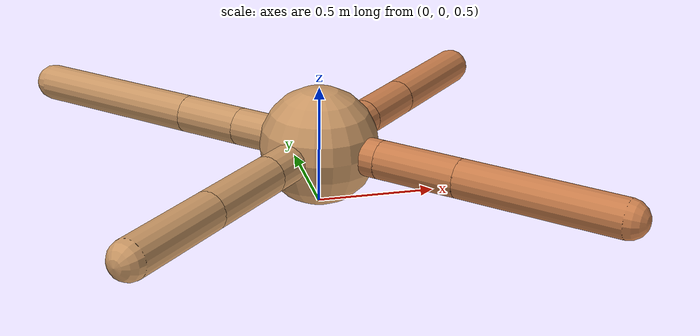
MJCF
<mujoco model="ant">
  <compiler angle="degree" coordinate="local" inertiafromgeom="true" />
  <option integrator="RK4" timestep="0.01" />
  <custom>
    <numeric data="0.0 0.0 0.55 1.0 0.0 0.0 0.0 0.0 1.0 0.0 -1.0 0.0 -1.0 0.0 1.0" name="init_qpos" />
  </custom>
  <default>
    <joint armature="1" damping="1" limited="true" />
    <geom conaffinity="0" condim="3" density="5.0" friction="1.5 0.1 0.1" margin="0.01" rgba="0.8 0.6 0.4 1" />
  </default>
  <worldbody>
    <body name="torso" pos="0 0 0.75">
      <geom name="torso_geom" pos="0 0 0" size="0.25" type="sphere" />

      <body name="front_left_leg" pos="0 0 0">
        <geom fromto="0.0 0.0 0.0 0.263355856823024 0.263355856823024 0.0" name="aux_1_geom" size="0.08" type="capsule" rgba=".8 .5 .3 1" />
        <body name="aux_1" pos="0.263355856823024 0.263355856823024 0.0">
          <joint axis="0 0 1" name="hip_1" pos="0.0 0.0 0.0" range="-40 40" type="hinge" />
          <geom fromto="0.0 0.0 0.0 0.21132762039474656 0.21132762039474656 0.0" name="left_leg_geom" size="0.08" type="capsule" rgba=".8 .5 .3 1" />
          <body pos="0.21132762039474656 0.21132762039474656 0.0" name="front_left_foot">
            <joint axis="-1 1 0" name="ankle_1" pos="0.0 0.0 0.0" range="30 100" type="hinge" />
            <geom fromto="0.0 0.0 0.0 0.37449354899847853 0.37449354899847853 0.0" name="left_ankle_geom" size="0.08" type="capsule" rgba=".8 .5 .3 1" />
          </body>
        </body>
      </body>
      <body name="front_right_leg" pos="0 0 0">
        <geom fromto="0.0 0.0 0.0 -0.2805653211003946 0.2805653211003946 0.0" name="aux_2_geom" size="0.08" type="capsule" />
        <body name="aux_2" pos="-0.2805653211003946 0.2805653211003946 0.0">
          <joint axis="0 0 1" name="hip_2" pos="0.0 0.0 0.0" range="-40 40" type="hinge" />
          <geom fromto="0.0 0.0 0.0 -0.20125978851566365 0.20125978851566365 0.0" name="right_leg_geom" size="0.08" type="capsule" />
          <body pos="-0.20125978851566365 0.20125978851566365 0.0" name="front_right_foot">
            <joint axis="1 1 0" name="ankle_2" pos="0.0 0.0 0.0" range="-100 -30" type="hinge" />
            <geom fromto="0.0 0.0 0.0 -0.5533867015085259 0.5533867015085259 0.0" name="right_ankle_geom" size="0.08" type="capsule" />
          </body>
        </body>
      </body>
      <body name="left_back_leg" pos="0 0 0">
        <geom fromto="0.0 0.0 0.0 -0.2672617116421324 -0.2672617116421324 0.0" name="aux_3_geom" size="0.08" type="capsule" />
        <body name="aux_3" pos="-0.2672617116421324 -0.2672617116421324 0.0">
          <joint axis="0 0 1" name="hip_3" pos="0.0 0.0 0.0" range="-40 40" type="hinge" />
          <geom fromto="0.0 0.0 0.0 -0.2758898349238185 -0.2758898349238185 0.0" name="back_leg_geom" size="0.08" type="capsule" />
          <body pos="-0.2758898349238185 -0.2758898349238185 0.0" name="left_back_foot">
            <joint axis="-1 1 0" name="ankle_3" pos="0.0 0.0 0.0" range="-100 -30" type="hinge" />
            <geom fromto="0.0 0.0 0.0 -0.32651913633325713 -0.32651913633325713 0.0" name="third_ankle_geom" size="0.08" type="capsule" />
          </body>
        </body>
      </body>
      <body name="right_back_leg" pos="0 0 0">
        <geom fromto="0.0 0.0 0.0 0.20823715948605293 -0.20823715948605293 0.0" name="aux_4_geom" size="0.08" type="capsule" rgba=".8 .5 .3 1" />
        <body name="aux_4" pos="0.20823715948605293 -0.20823715948605293 0.0">
          <joint axis="0 0 1" name="hip_4" pos="0.0 0.0 0.0" range="-40 40" type="hinge" />
          <geom fromto="0.0 0.0 0.0 0.24721636022541507 -0.24721636022541507 0.0" name="rightback_leg_geom" size="0.08" type="capsule" rgba=".8 .5 .3 1" />
          <body pos="0.24721636022541507 -0.24721636022541507 0.0" name="right_back_foot">
            <joint axis="1 1 0" name="ankle_4" pos="0.0 0.0 0.0" range="30 100" type="hinge" />
            <geom fromto="0.0 0.0 0.0 0.48609912778585135 -0.48609912778585135 0.0" name="fourth_ankle_geom" size="0.08" type="capsule" rgba=".8 .5 .3 1" />
          </body>
        </body>
      </body>
    </body>
  </worldbody>
  <actuator>
    <motor ctrllimited="true" ctrlrange="-1.0 1.0" joint="hip_4" gear="150" />
    <motor ctrllimited="true" ctrlrange="-1.0 1.0" joint="ankle_4" gear="150" />
    <motor ctrllimited="true" ctrlrange="-1.0 1.0" joint="hip_1" gear="150" />
    <motor ctrllimited="true" ctrlrange="-1.0 1.0" joint="ankle_1" gear="150" />
    <motor ctrllimited="true" ctrlrange="-1.0 1.0" joint="hip_2" gear="150" />
    <motor ctrllimited="true" ctrlrange="-1.0 1.0" joint="ankle_2" gear="150" />
    <motor ctrllimited="true" ctrlrange="-1.0 1.0" joint="hip_3" gear="150" />
    <motor ctrllimited="true" ctrlrange="-1.0 1.0" joint="ankle_3" gear="150" />
  </actuator>
</mujoco>
